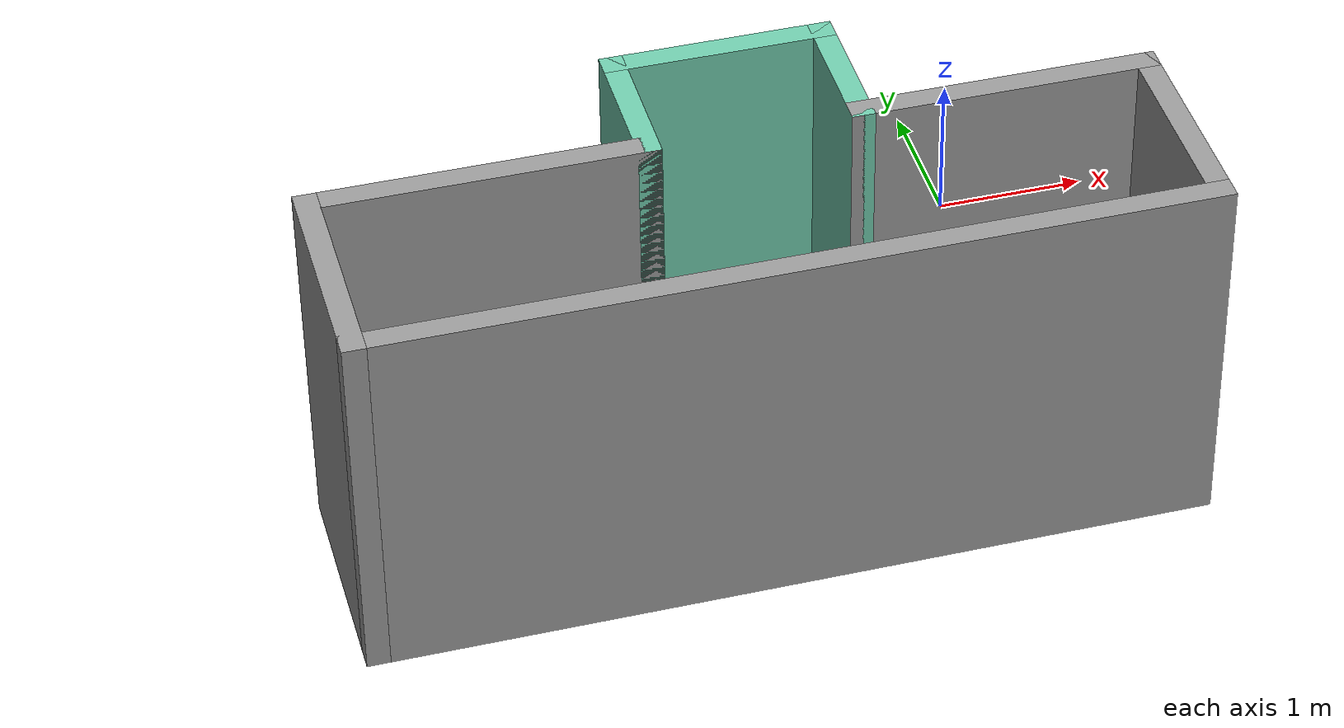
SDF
<?xml version='1.0'?>
<sdf version='1.7'>
  <model name='TestMaze2'>
    <pose>-2 -1.6925 0 0 -0 0</pose>
    <link name='Wall_0'>
      <collision name='Wall_0_Collision'>
        <geometry>
          <box>
            <size>1.5 0.15 2.5</size>
          </box>
        </geometry>
        <pose>0 0 1.25 0 -0 0</pose>
      </collision>
      <visual name='Wall_0_Visual'>
        <pose>0 0 1.25 0 -0 0</pose>
        <geometry>
          <box>
            <size>1.5 0.15 2.5</size>
          </box>
        </geometry>
        <material>
          <script>
            <uri>file://media/materials/scripts/gazebo.material</uri>
            <name>Gazebo/Grey</name>
          </script>
          <ambient>1 1 1 1</ambient>
        </material>
        <meta>
          <layer>0</layer>
        </meta>
      </visual>
      <pose>-2.65 -0.9425 0 0 -0 1.5708</pose>
    </link>
    <link name='Wall_1'>
      <collision name='Wall_1_Collision'>
        <geometry>
          <box>
            <size>2.25 0.15 2.5</size>
          </box>
        </geometry>
        <pose>0 0 1.25 0 -0 0</pose>
      </collision>
      <visual name='Wall_1_Visual'>
        <pose>0 0 1.25 0 -0 0</pose>
        <geometry>
          <box>
            <size>2.25 0.15 2.5</size>
          </box>
        </geometry>
        <material>
          <script>
            <uri>file://media/materials/scripts/gazebo.material</uri>
            <name>Gazebo/Grey</name>
          </script>
          <ambient>1 1 1 1</ambient>
        </material>
        <meta>
          <layer>0</layer>
        </meta>
      </visual>
      <pose>-1.6 -0.2675 0 0 -0 0</pose>
    </link>
    <link name='Wall_2'>
      <collision name='Wall_2_Collision'>
        <geometry>
          <box>
            <size>1 0.15 2.5</size>
          </box>
        </geometry>
        <pose>0 0 1.25 0 -0 0</pose>
      </collision>
      <visual name='Wall_2_Visual'>
        <pose>0 0 1.25 0 -0 0</pose>
        <geometry>
          <box>
            <size>1 0.15 2.5</size>
          </box>
        </geometry>
        <material>
          <script>
            <uri>file://media/materials/scripts/gazebo.material</uri>
            <name>Gazebo/Grey</name>
          </script>
          <ambient>0.435294 0.796078 0.67451 1</ambient>
        </material>
        <meta>
          <layer>0</layer>
        </meta>
      </visual>
      <pose>-0.55 0.1575 0 0 -0 1.5708</pose>
    </link>
    <link name='Wall_3'>
      <collision name='Wall_3_Collision'>
        <geometry>
          <box>
            <size>1.5 0.15 2.5</size>
          </box>
        </geometry>
        <pose>0 0 1.25 0 -0 0</pose>
      </collision>
      <visual name='Wall_3_Visual'>
        <pose>0 0 1.25 0 -0 0</pose>
        <geometry>
          <box>
            <size>1.5 0.15 2.5</size>
          </box>
        </geometry>
        <material>
          <script>
            <uri>file://media/materials/scripts/gazebo.material</uri>
            <name>Gazebo/Grey</name>
          </script>
          <ambient>0.435294 0.796078 0.67451 1</ambient>
        </material>
        <meta>
          <layer>0</layer>
        </meta>
      </visual>
      <pose>0.125 0.5825 0 0 -0 0</pose>
    </link>
    <link name='Wall_4'>
      <collision name='Wall_4_Collision'>
        <geometry>
          <box>
            <size>1 0.15 2.5</size>
          </box>
        </geometry>
        <pose>0 0 1.25 0 -0 0</pose>
      </collision>
      <visual name='Wall_4_Visual'>
        <pose>0 0 1.25 0 -0 0</pose>
        <geometry>
          <box>
            <size>1 0.15 2.5</size>
          </box>
        </geometry>
        <material>
          <script>
            <uri>file://media/materials/scripts/gazebo.material</uri>
            <name>Gazebo/Grey</name>
          </script>
          <ambient>0.435294 0.796078 0.67451 1</ambient>
        </material>
        <meta>
          <layer>0</layer>
        </meta>
      </visual>
      <pose>0.8 0.1575 0 0 -0 -1.5708</pose>
    </link>
    <link name='Wall_5'>
      <collision name='Wall_5_Collision'>
        <geometry>
          <box>
            <size>2 0.15 2.5</size>
          </box>
        </geometry>
        <pose>0 0 1.25 0 -0 0</pose>
      </collision>
      <visual name='Wall_5_Visual'>
        <pose>0 0 1.25 0 -0 0</pose>
        <geometry>
          <box>
            <size>2 0.15 2.5</size>
          </box>
        </geometry>
        <material>
          <script>
            <uri>file://media/materials/scripts/gazebo.material</uri>
            <name>Gazebo/Grey</name>
          </script>
          <ambient>1 1 1 1</ambient>
        </material>
        <meta>
          <layer>0</layer>
        </meta>
      </visual>
      <pose>1.725 -0.2675 0 0 -0 0</pose>
    </link>
    <link name='Wall_6'>
      <collision name='Wall_6_Collision'>
        <geometry>
          <box>
            <size>1.5 0.15 2.5</size>
          </box>
        </geometry>
        <pose>0 0 1.25 0 -0 0</pose>
      </collision>
      <visual name='Wall_6_Visual'>
        <pose>0 0 1.25 0 -0 0</pose>
        <geometry>
          <box>
            <size>1.5 0.15 2.5</size>
          </box>
        </geometry>
        <material>
          <script>
            <uri>file://media/materials/scripts/gazebo.material</uri>
            <name>Gazebo/Grey</name>
          </script>
          <ambient>1 1 1 1</ambient>
        </material>
        <meta>
          <layer>0</layer>
        </meta>
      </visual>
      <pose>2.65 -0.9425 0 0 -0 -1.5708</pose>
    </link>
    <link name='Wall_7'>
      <collision name='Wall_7_Collision'>
        <geometry>
          <box>
            <size>5.45 0.15 2.5</size>
          </box>
        </geometry>
        <pose>0 0 1.25 0 -0 0</pose>
      </collision>
      <visual name='Wall_7_Visual'>
        <pose>0 0 1.25 0 -0 0</pose>
        <geometry>
          <box>
            <size>5.45 0.15 2.5</size>
          </box>
        </geometry>
        <material>
          <script>
            <uri>file://media/materials/scripts/gazebo.material</uri>
            <name>Gazebo/Grey</name>
          </script>
          <ambient>1 1 1 1</ambient>
        </material>
        <meta>
          <layer>0</layer>
        </meta>
      </visual>
      <pose>0 -1.6175 0 0 -0 3.14159</pose>
    </link>
    <static>1</static>
  </model>
</sdf>
